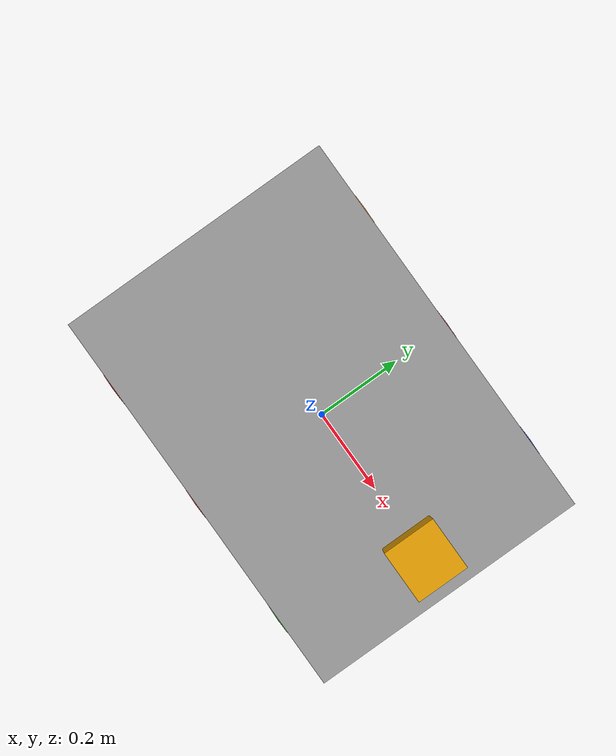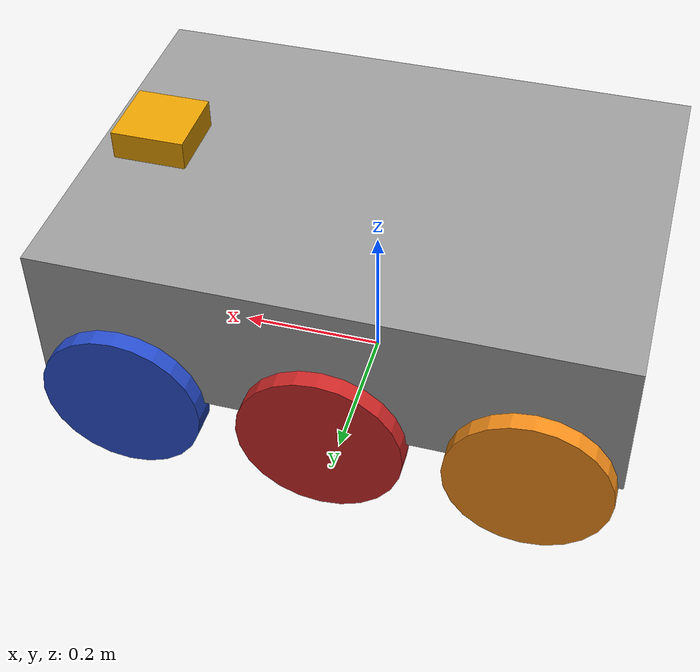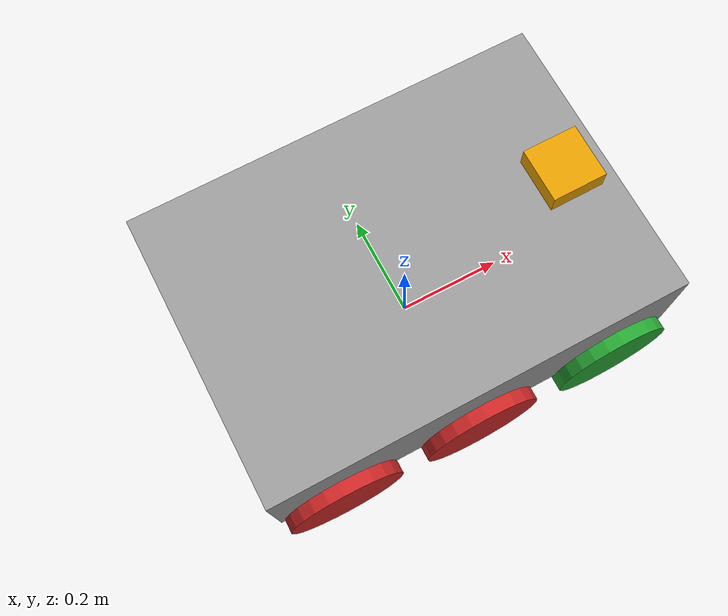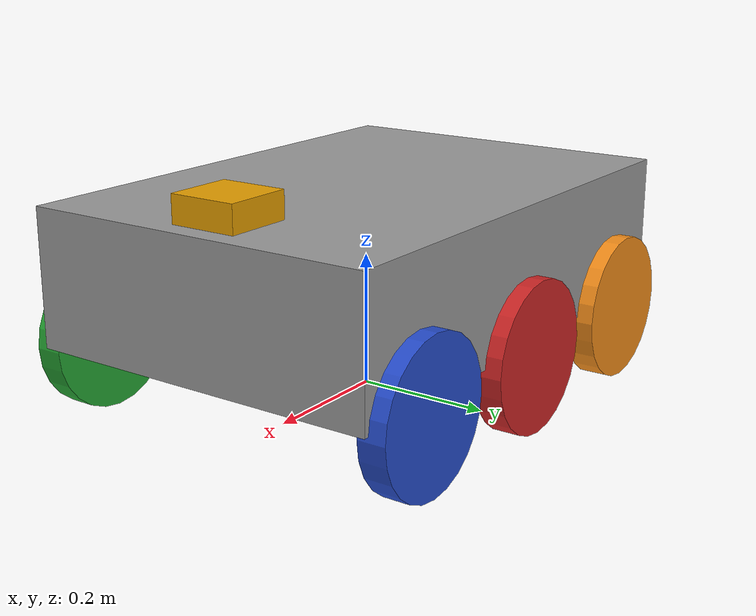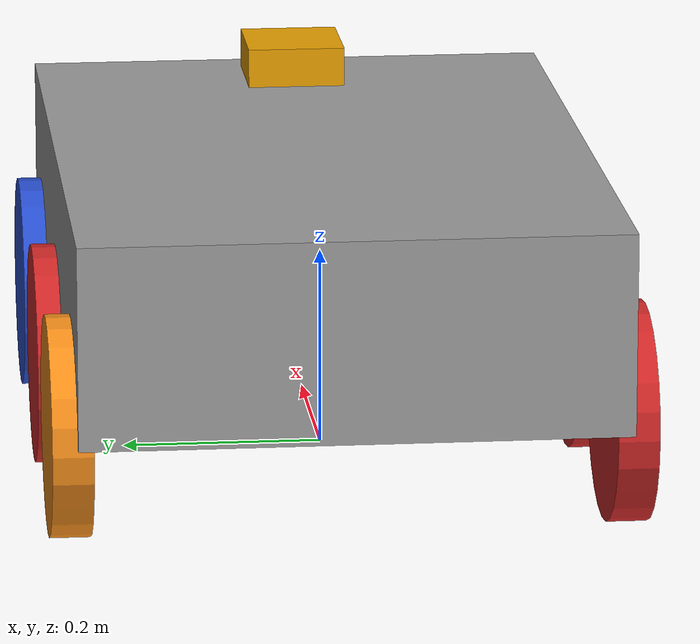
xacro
<?xml version="1.0"?>
<robot name="saltbot" xmlns:xacro="http://ros.org/wiki/xacro">

    <xacro:include filename="/home/seniorproject/nvi_ws/install/salt_pkg/share/salt_pkg/urdf/materials.xacro" />

    <xacro:property name="base_length" value=".762"/>
    <xacro:property name="base_width" value=".5334"/>
    <xacro:property name="base_height" value=".2"/>

    <xacro:property name="wheel_radius" value=".11"/>
    <xacro:property name="secondary_wheel_radius" value=".108"/>
    <xacro:property name="wheel_width" value=".04"/>

    <xacro:arg name="camera_name"   default="zedm" />
    <xacro:arg name="camera_model"  default="zedm" />
    <xacro:arg name="use_zed_localization" default="true" />

    <link name="zed_camera_link"/>

    <joint name="base_link_joint" type="fixed">
        <parent link="zed_camera_link"/>
        <child link="frame" />
        <origin xyz="0 0 0" rpy="0 0 0"/>
    </joint>

    <link name="frame">
        <visual>
            <origin xyz="0 0 .21" rpy="0 0 0"/>
            <geometry>
                <box size="${base_length} ${base_width} ${base_height}"/>
            </geometry>
            <material name="grey"/>
        </visual>

        <collision>
            <origin xyz="0 0 0.21" rpy="0 0 0"/>
            <geometry>
                <box size="${base_length} ${base_width} ${base_height}"/>
            </geometry>
        </collision>

    </link>

    <joint name="left_wheel_joint" type="continuous">
        <parent link="frame"/>
        <child link="left_wheel_link"/>
        <origin xyz="0 0.271 .1" rpy="-1.57 0 0"/>
        <axis xyz="0 0 1"/>
    </joint>

    <link name="left_wheel_link">
        <visual>
            <origin xyz="0 0 0" rpy="0 0 1.57"/>
            <geometry>
                <cylinder radius="${wheel_radius}" length="${wheel_width}"/>
            </geometry>
            <material name="red"/>
        </visual>

        <collision>
            <origin xyz="0 0 0" rpy="0 0 1.57"/>
            <geometry>
                <cylinder radius="${wheel_radius}" length="${wheel_width}"/>
            </geometry>
        </collision>

    </link>

    <joint name="right_wheel_joint" type="continuous">
        <parent link="frame"/>
        <child link="right_wheel_link"/>
        <origin xyz="0 -0.271 .1" rpy="-1.57 0 0"/>
        <axis xyz="0 0 1"/>
    </joint>

    <link name="right_wheel_link">
        <visual>
            <origin xyz="0 0 0" rpy="0 0 1.57"/>
            <geometry>
                <cylinder radius="${wheel_radius}" length="${wheel_width}"/>
            </geometry>
            <material name="red"/>
        </visual>

        <collision>
            <origin xyz="0 0 0" rpy="0 0 1.57"/>
            <geometry>
                <cylinder radius="${wheel_radius}" length="${wheel_width}"/>
            </geometry>
        </collision>

    </link>

    <joint name="BRwheel_joint" type="continuous">
        <parent link="frame"/>
        <child link="BRwheel_link"/>
        <origin xyz="-.2667 -0.271 .103" rpy="-1.57 0 0"/>
        <axis xyz="0 0 1"/>
    </joint>

    <link name="BRwheel_link">
        <visual>
            <origin xyz="0 0 0" rpy="0 0 1.57"/>
            <geometry>
                <cylinder radius="${secondary_wheel_radius}" length="${wheel_width}"/>
            </geometry>
            <material name="red"/>
        </visual>

        <collision>
            <origin xyz="0 0 0" rpy="0 0 1.57"/>
            <geometry>
                <cylinder length="0.04" radius="0.11"/>
            </geometry>
        </collision>

    </link>

    <joint name="FRwheel_joint" type="continuous">
        <parent link="frame"/>
        <child link="FRwheel_link"/>
        <origin xyz=".2667 -0.271 .103" rpy="-1.57 0 0"/>
        <axis xyz="0 0 1"/>
    </joint>

    <link name="FRwheel_link">
        <visual>
            <origin xyz="0 0 0" rpy="0 0 1.57"/>
            <geometry>
                <cylinder radius="${secondary_wheel_radius}" length="${wheel_width}"/>
            </geometry>
            <material name="green"/>
        </visual>

        <collision>
            <origin xyz="0 0 0" rpy="0 0 1.57"/>
            <geometry>
                <cylinder length="0.04" radius="0.11"/>
            </geometry>
        </collision>

    </link>

    <joint name="BLwheel_joint" type="continuous">
        <parent link="frame"/>
        <child link="BLwheel_link"/>
        <origin xyz="-.2667 0.271 .103" rpy="-1.57 0 0"/>
        <axis xyz="0 0 1"/>
    </joint>

    <link name="BLwheel_link">
        <visual>
            <origin xyz="0 0 0" rpy="0 0 1.57"/>
            <geometry>
                <cylinder radius="${secondary_wheel_radius}" length="${wheel_width}"/>
            </geometry>
            <material name="orange"/>
        </visual>

        <collision>
            <origin xyz="0 0 0" rpy="0 0 1.57"/>
            <geometry>
                <cylinder length="0.04" radius="0.11"/>
            </geometry>
        </collision>

    </link>

    <joint name="FLwheel_joint" type="continuous">
        <parent link="frame"/>
        <child link="FLwheel_link"/>
        <origin xyz=".2667 0.271 .103" rpy="-1.57 0 0"/>
        <axis xyz="0 0 1"/>
    </joint>

    <link name="FLwheel_link">
        <visual>
            <origin xyz="0 0 0" rpy="0 0 1.57"/>
            <geometry>
                <cylinder radius="${secondary_wheel_radius}" length="${wheel_width}"/>
            </geometry>
            <material name="blue"/>
        </visual>

        <collision>
            <origin xyz="0 0 0" rpy="0 0 1.57"/>
            <geometry>
                <cylinder length="0.04" radius="0.11"/>
            </geometry>
        </collision>

    </link>

    <joint name="imu_joint" type="fixed">
        <parent link="frame"/>
        <child link="imu_link"/>
        <origin xyz=".3 0 .325"/>
    </joint>

    <link name="imu_link">
        <visual>
            <geometry>
                <box size="0.1 0.1 0.05"/>
            </geometry>
        </visual>

        <collision>
            <geometry>
                <box size="0.1 0.1 0.05"/>
            </geometry>
        </collision>

    </link>

</robot>
